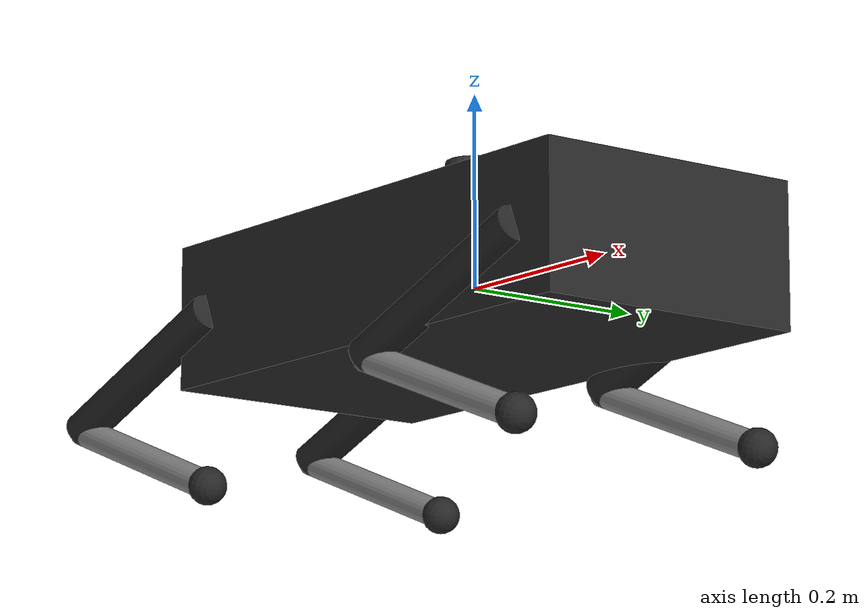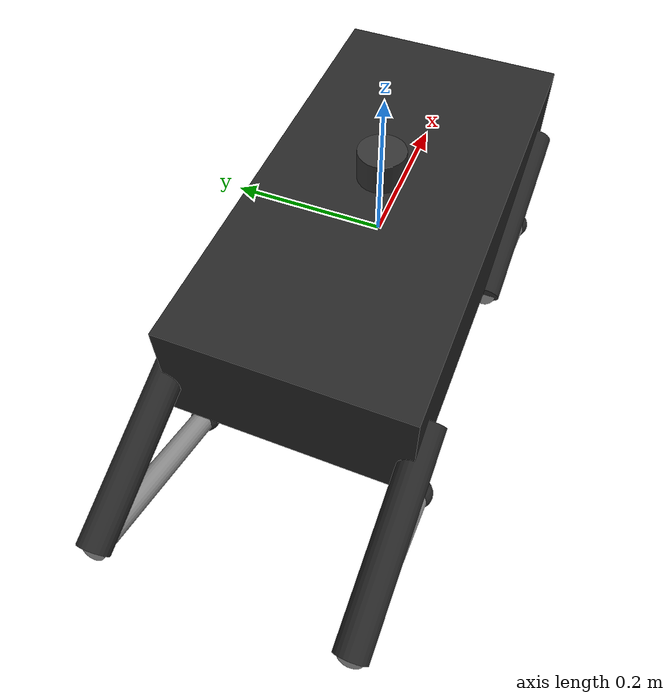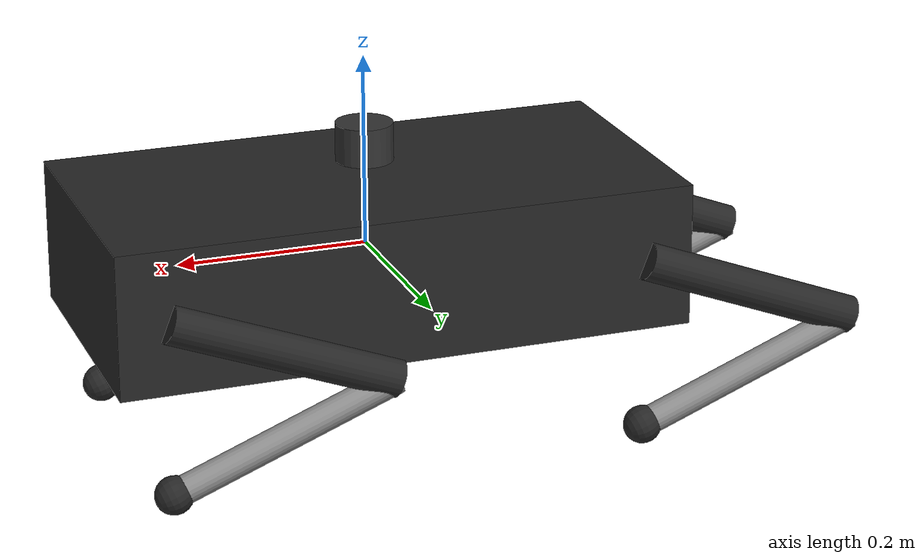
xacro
<?xml version="1.0"?>
<robot name="my_quadruped" xmlns:xacro="http://www.ros.org/wiki/xacro">

    <xacro:arg name="lidar_3d" default="false"/>
    <xacro:include filename="common/robot_properties.xacro"/>
    <xacro:include filename="common/materials.xacro"/>
    <xacro:include filename="common/inertial_macros.xacro"/>
    <xacro:include filename="common/gazebo_control.xacro"/>
    <xacro:include filename="parts/leg.xacro"/>

    <!-- Fixed root retained in SDF: it needs positive mass and inertia when
         base_footprint_joint is preserved, or Gazebo drops the whole robot. -->
    <link name="base_footprint">
        <!-- 물리 엔진이 링크를 지우지 않도록 아주 작은 더미 관성 주입 -->
        <inertial>
            <mass value="0.0001"/>
            <origin xyz="0 0 0" rpy="0 0 0"/>
            <inertia ixx="0.000001" ixy="0.0" ixz="0.0" iyy="0.000001" iyz="0.0" izz="0.000001"/>
        </inertial>
    </link>

    <joint name="base_footprint_joint" type="fixed">
        <parent link="base_footprint"/>
        <child link="base_link"/>
        <origin xyz="0 0 0" rpy="0 0 0"/>
    </joint>

    <!-- [추가] Gazebo가 base_footprint 조인트를 무시하고 병합하는 것을 방지 -->
    <gazebo reference="base_footprint_joint">
        <preserveFixedJoint>true</preserveFixedJoint>
    </gazebo>

    <link name="base_link">
        <visual>
            <origin xyz="0 0 0" rpy="0 0 0"/>
            <geometry>
                <box size="${base_length} ${base_width} ${base_height}"/>
            </geometry>
            <material name="black"/>
        </visual>
        <collision>
            <origin xyz="0 0 0" rpy="0 0 0"/>
            <geometry>
                <box size="${base_length} ${base_width} ${base_height}"/>
            </geometry>
        </collision>
        <xacro:box_inertia m="${base_mass}" x="${base_length}" y="${base_width}" z="${base_height}" xyz="0 0 0" rpy="0 0 0"/>
    </link>

    <xacro:leg prefix="fr" x_reflect="1" y_reflect="-1" />
    <xacro:leg prefix="fl" x_reflect="1" y_reflect="1" />
    <xacro:leg prefix="rr" x_reflect="-1" y_reflect="-1" />
    <xacro:leg prefix="rl" x_reflect="-1" y_reflect="1" />

    <!-- LiDAR Link -->
    <link name="lidar_link">
        <visual>
            <origin xyz="0 0 0" rpy="0 0 0"/>
            <geometry> <cylinder radius="0.03" length="0.04"/> </geometry>
            <material name="dark_grey"/>
        </visual>

        <collision>
            <origin xyz="0 0 0" rpy="0 0 0"/>
            <geometry> <cylinder radius="0.03" length="0.04"/> </geometry>
        </collision>

        <inertial>
            <mass value="0.10"/>
            <origin xyz="0 0 0" rpy="0 0 0"/>
            <inertia ixx="5.0e-5" ixy="0.0" ixz="0.0" iyy="5.0e-5" iyz="0.0" izz="5.0e-5"/>
        </inertial>
    </link>

    <!-- LiDAR joint -->
    <joint name="lidar_joint" type="fixed">
        <parent link="base_link"/>
        <child link="lidar_link"/>
        <!-- base_link 상단 -->
        <origin xyz="0 0 0.11" rpy="0 0 0"/>
    </joint>

</robot>

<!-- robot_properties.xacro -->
<robot xmlns:xacro="http://www.ros.org/wiki/xacro">

  <xacro:property name="base_length" value="0.60" />
  <xacro:property name="base_width"  value="0.30" />
  <xacro:property name="base_height" value="0.15" />
  <xacro:property name="base_mass"   value="6.0" />  <!-- default 6.0 kg -->
  <xacro:property name="hip_offset_x" value="0.25" />
  <xacro:property name="hip_offset_y" value="0.10" />
  <xacro:property name="hip_offset_z" value="0.00" />
  <xacro:property name="hip_length"   value="0.08" />
  <xacro:property name="hip_mass"     value="0.20" />
  <xacro:property name="thigh_length" value="0.25" />
  <xacro:property name="thigh_mass"   value="0.70" />
  <xacro:property name="calf_length"  value="0.25" />
  <xacro:property name="calf_mass"    value="0.50" />
  <xacro:property name="hip_min" value="-0.8" />
  <xacro:property name="hip_max" value="0.8" />
  <xacro:property name="thigh_min" value="-1.0" />
  <xacro:property name="thigh_max" value="4.0" />

</robot>

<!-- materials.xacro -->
<robot xmlns:xacro="http://www.ros.org/wiki/xacro">
  <material name="black">
    <color rgba="0.15 0.15 0.15 1.0"/>
  </material>

  <material name="grey">
    <color rgba="0.55 0.55 0.55 1.0"/>
  </material>

  <material name="dark_grey">
    <color rgba="0.2 0.2 0.2 1.0"/>
  </material>

  <material name="silver">
    <color rgba="0.88 0.88 0.88 1.0"/>
  </material>

  <material name="red">
    <color rgba="0.8 0.1 0.1 1.0"/>
  </material>

</robot>

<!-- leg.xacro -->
<robot xmlns:xacro="http://www.ros.org/wiki/xacro">

  <xacro:macro name="leg" params="prefix x_reflect y_reflect">

    <joint name="${prefix}_hip_joint" type="revolute">
      <parent link="base_link"/>
      <child link="${prefix}_hip_link"/>
      <origin xyz="${x_reflect * hip_offset_x} ${y_reflect * hip_offset_y} ${hip_offset_z}" rpy="0 0 0"/>
      <axis xyz="1 0 0"/>
      <limit lower="${hip_min}" upper="${hip_max}" effort="20" velocity="10"/>
    </joint>

    <link name="${prefix}_hip_link">
      <visual>
        <origin xyz="0 0 0" rpy="0 0 0"/>
        <geometry><box size="${hip_length} 0.04 0.04"/></geometry>
        <material name="grey"/>
      </visual>
      <collision>
        <origin xyz="0 0 0" rpy="0 0 0"/>
        <geometry><box size="${hip_length} 0.04 0.04"/></geometry>
      </collision>
      <xacro:box_inertia m="${hip_mass}" x="${hip_length}" y="0.04" z="0.04" xyz="0 0 0" rpy="0 0 0"/>
    </link>

    <joint name="${prefix}_thigh_joint" type="revolute">
      <parent link="${prefix}_hip_link"/>
      <child link="${prefix}_thigh_link"/>
      <origin xyz="0 ${y_reflect * 0.05} 0" rpy="0 1.2 0"/> <!-- defalt pose -->
      <axis xyz="0 1 0"/>
      <limit lower="${thigh_min}" upper="${thigh_max}" effort="30" velocity="10"/>
    </joint>

    <link name="${prefix}_thigh_link">
      <visual>
        <origin xyz="0 0 ${-thigh_length/2}" rpy="0 0 0"/>
        <geometry><cylinder length="${thigh_length}" radius="0.02"/></geometry>
        <material name="black"/>
      </visual>
      <collision>
        <origin xyz="0 0 ${-thigh_length/2}" rpy="0 0 0"/>
        <geometry><cylinder length="${thigh_length}" radius="0.02"/></geometry>
      </collision>
      <xacro:cylinder_inertia m="${thigh_mass}" r="0.02" h="${thigh_length}" xyz="0 0 -0.05" rpy="0 0 0"/>
    </link>

    <joint name="${prefix}_calf_joint" type="revolute">
      <parent link="${prefix}_thigh_link"/>
      <child link="${prefix}_calf_link"/>
      <origin xyz="0 0 ${-thigh_length}" rpy="0 -2.4 0"/>   <!-- defalt pose -->
      <axis xyz="0 1 0"/>
      <limit lower="-2.8" upper="2.8" effort="30" velocity="10"/>
    </joint>

    <link name="${prefix}_calf_link">
      <visual>
        <origin xyz="0 0 ${-calf_length/2}" rpy="0 0 0"/>
        <geometry><cylinder length="${calf_length}" radius="0.015"/></geometry>
        <material name="grey"/>
      </visual>
      <collision>
        <origin xyz="0 0 ${-calf_length/2}" rpy="0 0 0"/>
        <geometry><cylinder length="${calf_length}" radius="0.015"/></geometry>
      </collision>
      <xacro:cylinder_inertia m="${calf_mass}" r="0.015" h="${calf_length}" xyz="0 0 -0.05" rpy="0 0 0"/>
    </link>

    <joint name="${prefix}_foot_fixed" type="fixed">
        <parent link="${prefix}_calf_link"/>
        <child link="${prefix}_foot"/>
        <origin xyz="0 0 ${-calf_length}" rpy="0 0 0"/>
    </joint>

    <link name="${prefix}_foot">
      <visual>
        <geometry><sphere radius="0.02"/></geometry>
        <material name="black"/>
      </visual>
      <collision>
        <geometry><sphere radius="0.02"/></geometry>
      </collision>
      <xacro:sphere_inertia m="0.10" r="0.02" xyz="0 0 0" rpy="0 0 0"/>
    </link>

    <gazebo reference="${prefix}_foot">
      <mu1 value="1.0"/>
      <mu2 value="1.0"/>
      <kp value="1000000.0"/>
      <kd value="100.0"/>
    </gazebo>

    <gazebo>
      <plugin filename="gz-sim-joint-position-controller-system"
              name="gz::sim::systems::JointPositionController">
        <joint_name>${prefix}_hip_joint</joint_name>
        <p_gain>40.0</p_gain> <!-- default: 100.0 -->
        <i_gain>0.1</i_gain>
        <d_gain>1.0</d_gain>
        <i_max>10.0</i_max>
        <i_min>-10.0</i_min>
      </plugin>
    </gazebo>

    <gazebo>
      <plugin filename="gz-sim-joint-position-controller-system"
              name="gz::sim::systems::JointPositionController">
        <joint_name>${prefix}_thigh_joint</joint_name>
        <p_gain>70.0</p_gain> <!-- default: 150.0 -->
        <i_gain>0.1</i_gain>
        <d_gain>4.0</d_gain>
        <i_max>15.0</i_max>
        <i_min>-15.0</i_min>
      </plugin>
    </gazebo>

    <gazebo>
      <plugin filename="gz-sim-joint-position-controller-system"
              name="gz::sim::systems::JointPositionController">
        <joint_name>${prefix}_calf_joint</joint_name>
        <p_gain>70.0</p_gain> <!-- default: 150.0 -->
        <i_gain>0.1</i_gain>
        <d_gain>2.0</d_gain>
        <i_max>15.0</i_max>
        <i_min>-15.0</i_min>
      </plugin>
    </gazebo>

  </xacro:macro> </robot>
